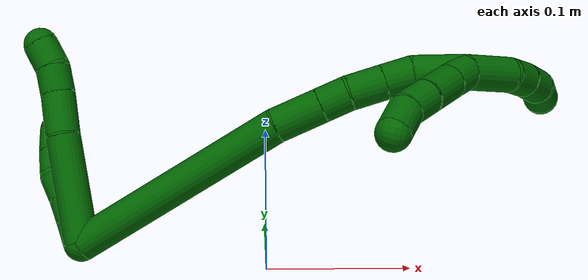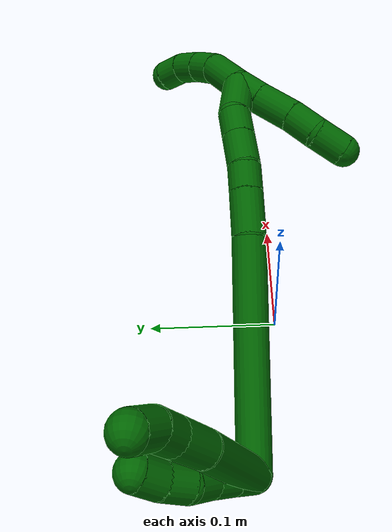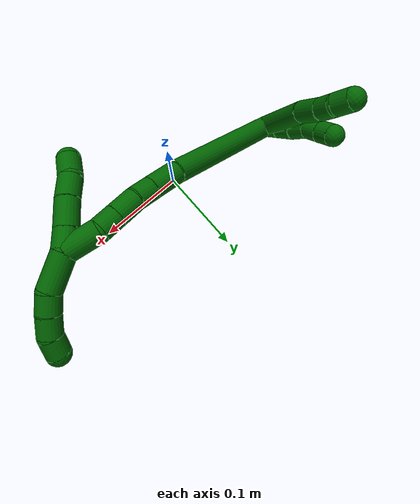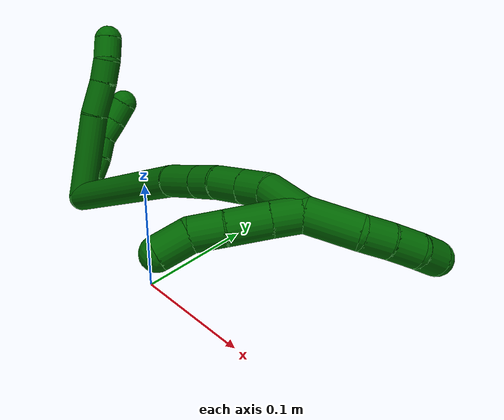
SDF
<sdf version="1.7">
 <world name="default">
  <model name="6">
   <static>0</static>
   <link name="6">
    <collision name="collision-cylinder-e_1_2_8">
     <pose>-0.006148 0.035277 0.015831 -1.14898 -0.15769 0.102199</pose>
     <geometry><cylinder><radius>0.0125</radius><length>0.078303</length></cylinder></geometry>
     <surface>
      <friction><ode><mu>1.16</mu><mu2>1.16</mu2><slip1>0</slip1><slip2>0</slip2></ode></friction>
      <contact><ode><kp>1e+06</kp><kd>1</kd><max_vel>0</max_vel><min_depth>0.001</min_depth></ode></contact>
     </surface>
    </collision>
    <visual name="visual-cylinder-e_1_2_8">
     <pose>-0.006148 0.035277 0.015831 -1.14898 -0.15769 0.102199</pose>
     <geometry><cylinder><radius>0.0125</radius><length>0.078303</length></cylinder></geometry>
     <material><ambient>0 0.392157 0.003922 1</ambient></material>
    </visual>
    <collision name="collision-cylinder-e_2_8_9">
     <pose>-0.016893 0.08436 0.037395 -1.17716 -0.298291 0.199931</pose>
     <geometry><cylinder><radius>0.0125</radius><length>0.031283</length></cylinder></geometry>
     <surface>
      <friction><ode><mu>1.16</mu><mu2>1.16</mu2><slip1>0</slip1><slip2>0</slip2></ode></friction>
      <contact><ode><kp>1e+06</kp><kd>1</kd><max_vel>0</max_vel><min_depth>0.001</min_depth></ode></contact>
     </surface>
    </collision>
    <visual name="visual-cylinder-e_2_8_9">
     <pose>-0.016893 0.08436 0.037395 -1.17716 -0.298291 0.199931</pose>
     <geometry><cylinder><radius>0.0125</radius><length>0.031283</length></cylinder></geometry>
     <material><ambient>0 0.392157 0.003922 1</ambient></material>
    </visual>
    <collision name="collision-cylinder-e_3_9_10">
     <pose>-0.023604 0.107153 0.047476 -1.12027 -0.208712 0.13118</pose>
     <geometry><cylinder><radius>0.0125</radius><length>0.020405</length></cylinder></geometry>
     <surface>
      <friction><ode><mu>1.16</mu><mu2>1.16</mu2><slip1>0</slip1><slip2>0</slip2></ode></friction>
      <contact><ode><kp>1e+06</kp><kd>1</kd><max_vel>0</max_vel><min_depth>0.001</min_depth></ode></contact>
     </surface>
    </collision>
    <visual name="visual-cylinder-e_3_9_10">
     <pose>-0.023604 0.107153 0.047476 -1.12027 -0.208712 0.13118</pose>
     <geometry><cylinder><radius>0.0125</radius><length>0.020405</length></cylinder></geometry>
     <material><ambient>0 0.392157 0.003922 1</ambient></material>
    </visual>
    <collision name="collision-cylinder-e_4_10_6">
     <pose>-0.028479 0.123161 0.05839 -0.818831 -0.279576 0.121963</pose>
     <geometry><cylinder><radius>0.0125</radius><length>0.02001</length></cylinder></geometry>
     <surface>
      <friction><ode><mu>1.16</mu><mu2>1.16</mu2><slip1>0</slip1><slip2>0</slip2></ode></friction>
      <contact><ode><kp>1e+06</kp><kd>1</kd><max_vel>0</max_vel><min_depth>0.001</min_depth></ode></contact>
     </surface>
    </collision>
    <visual name="visual-cylinder-e_4_10_6">
     <pose>-0.028479 0.123161 0.05839 -0.818831 -0.279576 0.121963</pose>
     <geometry><cylinder><radius>0.0125</radius><length>0.02001</length></cylinder></geometry>
     <material><ambient>0 0.392157 0.003922 1</ambient></material>
    </visual>
    <collision name="collision-cylinder-e_1_2_11">
     <pose>-0.005517 0.006743 0.004908 -0.94167 -0.58442 0.303885</pose>
     <geometry><cylinder><radius>0.0125</radius><length>0.02</length></cylinder></geometry>
     <surface>
      <friction><ode><mu>1.16</mu><mu2>1.16</mu2><slip1>0</slip1><slip2>0</slip2></ode></friction>
      <contact><ode><kp>1e+06</kp><kd>1</kd><max_vel>0</max_vel><min_depth>0.001</min_depth></ode></contact>
     </surface>
    </collision>
    <visual name="visual-cylinder-e_1_2_11">
     <pose>-0.005517 0.006743 0.004908 -0.94167 -0.58442 0.303885</pose>
     <geometry><cylinder><radius>0.0125</radius><length>0.02</length></cylinder></geometry>
     <material><ambient>0 0.392157 0.003922 1</ambient></material>
    </visual>
    <collision name="collision-cylinder-e_2_11_12">
     <pose>-0.016551 0.020095 0.014905 -0.914533 -0.584336 0.293859</pose>
     <geometry><cylinder><radius>0.0125</radius><length>0.02</length></cylinder></geometry>
     <surface>
      <friction><ode><mu>1.16</mu><mu2>1.16</mu2><slip1>0</slip1><slip2>0</slip2></ode></friction>
      <contact><ode><kp>1e+06</kp><kd>1</kd><max_vel>0</max_vel><min_depth>0.001</min_depth></ode></contact>
     </surface>
    </collision>
    <visual name="visual-cylinder-e_2_11_12">
     <pose>-0.016551 0.020095 0.014905 -0.914533 -0.584336 0.293859</pose>
     <geometry><cylinder><radius>0.0125</radius><length>0.02</length></cylinder></geometry>
     <material><ambient>0 0.392157 0.003922 1</ambient></material>
    </visual>
    <collision name="collision-cylinder-e_3_12_13">
     <pose>-0.026237 0.033638 0.02587 -0.867805 -0.430159 0.201759</pose>
     <geometry><cylinder><radius>0.0125</radius><length>0.02</length></cylinder></geometry>
     <surface>
      <friction><ode><mu>1.16</mu><mu2>1.16</mu2><slip1>0</slip1><slip2>0</slip2></ode></friction>
      <contact><ode><kp>1e+06</kp><kd>1</kd><max_vel>0</max_vel><min_depth>0.001</min_depth></ode></contact>
     </surface>
    </collision>
    <visual name="visual-cylinder-e_3_12_13">
     <pose>-0.026237 0.033638 0.02587 -0.867805 -0.430159 0.201759</pose>
     <geometry><cylinder><radius>0.0125</radius><length>0.02</length></cylinder></geometry>
     <material><ambient>0 0.392157 0.003922 1</ambient></material>
    </visual>
    <collision name="collision-cylinder-e_4_13_14">
     <pose>-0.036655 0.047734 0.034856 -1.16111 -0.674786 0.452354</pose>
     <geometry><cylinder><radius>0.0125</radius><length>0.02</length></cylinder></geometry>
     <surface>
      <friction><ode><mu>1.16</mu><mu2>1.16</mu2><slip1>0</slip1><slip2>0</slip2></ode></friction>
      <contact><ode><kp>1e+06</kp><kd>1</kd><max_vel>0</max_vel><min_depth>0.001</min_depth></ode></contact>
     </surface>
    </collision>
    <visual name="visual-cylinder-e_4_13_14">
     <pose>-0.036655 0.047734 0.034856 -1.16111 -0.674786 0.452354</pose>
     <geometry><cylinder><radius>0.0125</radius><length>0.02</length></cylinder></geometry>
     <material><ambient>0 0.392157 0.003922 1</ambient></material>
    </visual>
    <collision name="collision-cylinder-e_5_14_5">
     <pose>-0.047963 0.063186 0.040348 -1.29106 -0.530594 0.403703</pose>
     <geometry><cylinder><radius>0.0125</radius><length>0.02</length></cylinder></geometry>
     <surface>
      <friction><ode><mu>1.16</mu><mu2>1.16</mu2><slip1>0</slip1><slip2>0</slip2></ode></friction>
      <contact><ode><kp>1e+06</kp><kd>1</kd><max_vel>0</max_vel><min_depth>0.001</min_depth></ode></contact>
     </surface>
    </collision>
    <visual name="visual-cylinder-e_5_14_5">
     <pose>-0.047963 0.063186 0.040348 -1.29106 -0.530594 0.403703</pose>
     <geometry><cylinder><radius>0.0125</radius><length>0.02</length></cylinder></geometry>
     <material><ambient>0 0.392157 0.003922 1</ambient></material>
    </visual>
    <collision name="collision-cylinder-e_1_2_15">
     <pose>0.009672 0.056445 -0.057191 -2.36276 0.119788 -0.290198</pose>
     <geometry><cylinder><radius>0.0125</radius><length>0.16187</length></cylinder></geometry>
     <surface>
      <friction><ode><mu>1.16</mu><mu2>1.16</mu2><slip1>0</slip1><slip2>0</slip2></ode></friction>
      <contact><ode><kp>1e+06</kp><kd>1</kd><max_vel>0</max_vel><min_depth>0.001</min_depth></ode></contact>
     </surface>
    </collision>
    <visual name="visual-cylinder-e_1_2_15">
     <pose>0.009672 0.056445 -0.057191 -2.36276 0.119788 -0.290198</pose>
     <geometry><cylinder><radius>0.0125</radius><length>0.16187</length></cylinder></geometry>
     <material><ambient>0 0.392157 0.003922 1</ambient></material>
    </visual>
    <collision name="collision-cylinder-e_2_15_16">
     <pose>0.02022 0.123336 -0.128109 -2.49106 0.050776 -0.15031</pose>
     <geometry><cylinder><radius>0.0125</radius><length>0.034542</length></cylinder></geometry>
     <surface>
      <friction><ode><mu>1.16</mu><mu2>1.16</mu2><slip1>0</slip1><slip2>0</slip2></ode></friction>
      <contact><ode><kp>1e+06</kp><kd>1</kd><max_vel>0</max_vel><min_depth>0.001</min_depth></ode></contact>
     </surface>
    </collision>
    <visual name="visual-cylinder-e_2_15_16">
     <pose>0.02022 0.123336 -0.128109 -2.49106 0.050776 -0.15031</pose>
     <geometry><cylinder><radius>0.0125</radius><length>0.034542</length></cylinder></geometry>
     <material><ambient>0 0.392157 0.003922 1</ambient></material>
    </visual>
    <collision name="collision-cylinder-e_3_16_17">
     <pose>0.021531 0.140051 -0.150071 -2.49098 0.041945 -0.124218</pose>
     <geometry><cylinder><radius>0.0125</radius><length>0.02072</length></cylinder></geometry>
     <surface>
      <friction><ode><mu>1.16</mu><mu2>1.16</mu2><slip1>0</slip1><slip2>0</slip2></ode></friction>
      <contact><ode><kp>1e+06</kp><kd>1</kd><max_vel>0</max_vel><min_depth>0.001</min_depth></ode></contact>
     </surface>
    </collision>
    <visual name="visual-cylinder-e_3_16_17">
     <pose>0.021531 0.140051 -0.150071 -2.49098 0.041945 -0.124218</pose>
     <geometry><cylinder><radius>0.0125</radius><length>0.02072</length></cylinder></geometry>
     <material><ambient>0 0.392157 0.003922 1</ambient></material>
    </visual>
    <collision name="collision-cylinder-e_4_17_18">
     <pose>0.021029 0.152836 -0.169303 -2.6067 -0.073139 0.265467</pose>
     <geometry><cylinder><radius>0.0125</radius><length>0.025632</length></cylinder></geometry>
     <surface>
      <friction><ode><mu>1.16</mu><mu2>1.16</mu2><slip1>0</slip1><slip2>0</slip2></ode></friction>
      <contact><ode><kp>1e+06</kp><kd>1</kd><max_vel>0</max_vel><min_depth>0.001</min_depth></ode></contact>
     </surface>
    </collision>
    <visual name="visual-cylinder-e_4_17_18">
     <pose>0.021029 0.152836 -0.169303 -2.6067 -0.073139 0.265467</pose>
     <geometry><cylinder><radius>0.0125</radius><length>0.025632</length></cylinder></geometry>
     <material><ambient>0 0.392157 0.003922 1</ambient></material>
    </visual>
    <collision name="collision-cylinder-e_5_18_19">
     <pose>0.019327 0.164774 -0.189522 -2.61008 -0.071423 0.261013</pose>
     <geometry><cylinder><radius>0.0125</radius><length>0.021452</length></cylinder></geometry>
     <surface>
      <friction><ode><mu>1.16</mu><mu2>1.16</mu2><slip1>0</slip1><slip2>0</slip2></ode></friction>
      <contact><ode><kp>1e+06</kp><kd>1</kd><max_vel>0</max_vel><min_depth>0.001</min_depth></ode></contact>
     </surface>
    </collision>
    <visual name="visual-cylinder-e_5_18_19">
     <pose>0.019327 0.164774 -0.189522 -2.61008 -0.071423 0.261013</pose>
     <geometry><cylinder><radius>0.0125</radius><length>0.021452</length></cylinder></geometry>
     <material><ambient>0 0.392157 0.003922 1</ambient></material>
    </visual>
    <collision name="collision-cylinder-e_6_19_1">
     <pose>0.020524 0.174535 -0.215992 -2.89513 0.1099 -0.835861</pose>
     <geometry><cylinder><radius>0.0125</radius><length>0.035785</length></cylinder></geometry>
     <surface>
      <friction><ode><mu>1.16</mu><mu2>1.16</mu2><slip1>0</slip1><slip2>0</slip2></ode></friction>
      <contact><ode><kp>1e+06</kp><kd>1</kd><max_vel>0</max_vel><min_depth>0.001</min_depth></ode></contact>
     </surface>
    </collision>
    <visual name="visual-cylinder-e_6_19_1">
     <pose>0.020524 0.174535 -0.215992 -2.89513 0.1099 -0.835861</pose>
     <geometry><cylinder><radius>0.0125</radius><length>0.035785</length></cylinder></geometry>
     <material><ambient>0 0.392157 0.003922 1</ambient></material>
    </visual>
    <collision name="collision-cylinder-e_1_1_20">
     <pose>0.012414 0.181993 -0.249349 -2.95035 -0.550547 2.48686</pose>
     <geometry><cylinder><radius>0.0125</radius><length>0.038507</length></cylinder></geometry>
     <surface>
      <friction><ode><mu>1.16</mu><mu2>1.16</mu2><slip1>0</slip1><slip2>0</slip2></ode></friction>
      <contact><ode><kp>1e+06</kp><kd>1</kd><max_vel>0</max_vel><min_depth>0.001</min_depth></ode></contact>
     </surface>
    </collision>
    <visual name="visual-cylinder-e_1_1_20">
     <pose>0.012414 0.181993 -0.249349 -2.95035 -0.550547 2.48686</pose>
     <geometry><cylinder><radius>0.0125</radius><length>0.038507</length></cylinder></geometry>
     <material><ambient>0 0.392157 0.003922 1</ambient></material>
    </visual>
    <collision name="collision-cylinder-e_2_20_21">
     <pose>-0.005268 0.185106 -0.272042 3.14066 -0.857554 -3.13954</pose>
     <geometry><cylinder><radius>0.0125</radius><length>0.020124</length></cylinder></geometry>
     <surface>
      <friction><ode><mu>1.16</mu><mu2>1.16</mu2><slip1>0</slip1><slip2>0</slip2></ode></friction>
      <contact><ode><kp>1e+06</kp><kd>1</kd><max_vel>0</max_vel><min_depth>0.001</min_depth></ode></contact>
     </surface>
    </collision>
    <visual name="visual-cylinder-e_2_20_21">
     <pose>-0.005268 0.185106 -0.272042 3.14066 -0.857554 -3.13954</pose>
     <geometry><cylinder><radius>0.0125</radius><length>0.020124</length></cylinder></geometry>
     <material><ambient>0 0.392157 0.003922 1</ambient></material>
    </visual>
    <collision name="collision-cylinder-e_3_21_22">
     <pose>-0.021256 0.184121 -0.285016 2.98968 -0.913547 -2.83432</pose>
     <geometry><cylinder><radius>0.0125</radius><length>0.021168</length></cylinder></geometry>
     <surface>
      <friction><ode><mu>1.16</mu><mu2>1.16</mu2><slip1>0</slip1><slip2>0</slip2></ode></friction>
      <contact><ode><kp>1e+06</kp><kd>1</kd><max_vel>0</max_vel><min_depth>0.001</min_depth></ode></contact>
     </surface>
    </collision>
    <visual name="visual-cylinder-e_3_21_22">
     <pose>-0.021256 0.184121 -0.285016 2.98968 -0.913547 -2.83432</pose>
     <geometry><cylinder><radius>0.0125</radius><length>0.021168</length></cylinder></geometry>
     <material><ambient>0 0.392157 0.003922 1</ambient></material>
    </visual>
    <collision name="collision-cylinder-e_4_22_4">
     <pose>-0.038616 0.180154 -0.294933 2.43833 -1.09554 -2.05869</pose>
     <geometry><cylinder><radius>0.0125</radius><length>0.020201</length></cylinder></geometry>
     <surface>
      <friction><ode><mu>1.16</mu><mu2>1.16</mu2><slip1>0</slip1><slip2>0</slip2></ode></friction>
      <contact><ode><kp>1e+06</kp><kd>1</kd><max_vel>0</max_vel><min_depth>0.001</min_depth></ode></contact>
     </surface>
    </collision>
    <visual name="visual-cylinder-e_4_22_4">
     <pose>-0.038616 0.180154 -0.294933 2.43833 -1.09554 -2.05869</pose>
     <geometry><cylinder><radius>0.0125</radius><length>0.020201</length></cylinder></geometry>
     <material><ambient>0 0.392157 0.003922 1</ambient></material>
    </visual>
    <collision name="collision-cylinder-e_1_1_23">
     <pose>0.0301 0.173908 -0.227806 0.74045 0.802237 0.326289</pose>
     <geometry><cylinder><radius>0.0125</radius><length>0.02118</length></cylinder></geometry>
     <surface>
      <friction><ode><mu>1.16</mu><mu2>1.16</mu2><slip1>0</slip1><slip2>0</slip2></ode></friction>
      <contact><ode><kp>1e+06</kp><kd>1</kd><max_vel>0</max_vel><min_depth>0.001</min_depth></ode></contact>
     </surface>
    </collision>
    <visual name="visual-cylinder-e_1_1_23">
     <pose>0.0301 0.173908 -0.227806 0.74045 0.802237 0.326289</pose>
     <geometry><cylinder><radius>0.0125</radius><length>0.02118</length></cylinder></geometry>
     <material><ambient>0 0.392157 0.003922 1</ambient></material>
    </visual>
    <collision name="collision-cylinder-e_2_23_24">
     <pose>0.049025 0.162011 -0.215147 0.764676 0.846294 0.358314</pose>
     <geometry><cylinder><radius>0.0125</radius><length>0.030214</length></cylinder></geometry>
     <surface>
      <friction><ode><mu>1.16</mu><mu2>1.16</mu2><slip1>0</slip1><slip2>0</slip2></ode></friction>
      <contact><ode><kp>1e+06</kp><kd>1</kd><max_vel>0</max_vel><min_depth>0.001</min_depth></ode></contact>
     </surface>
    </collision>
    <visual name="visual-cylinder-e_2_23_24">
     <pose>0.049025 0.162011 -0.215147 0.764676 0.846294 0.358314</pose>
     <geometry><cylinder><radius>0.0125</radius><length>0.030214</length></cylinder></geometry>
     <material><ambient>0 0.392157 0.003922 1</ambient></material>
    </visual>
    <collision name="collision-cylinder-e_3_24_25">
     <pose>0.068436 0.148982 -0.20171 0.776139 0.749315 0.318778</pose>
     <geometry><cylinder><radius>0.0125</radius><length>0.023778</length></cylinder></geometry>
     <surface>
      <friction><ode><mu>1.16</mu><mu2>1.16</mu2><slip1>0</slip1><slip2>0</slip2></ode></friction>
      <contact><ode><kp>1e+06</kp><kd>1</kd><max_vel>0</max_vel><min_depth>0.001</min_depth></ode></contact>
     </surface>
    </collision>
    <visual name="visual-cylinder-e_3_24_25">
     <pose>0.068436 0.148982 -0.20171 0.776139 0.749315 0.318778</pose>
     <geometry><cylinder><radius>0.0125</radius><length>0.023778</length></cylinder></geometry>
     <material><ambient>0 0.392157 0.003922 1</ambient></material>
    </visual>
    <collision name="collision-cylinder-e_4_25_3">
     <pose>0.085398 0.134645 -0.192729 1.24649 0.795177 0.586345</pose>
     <geometry><cylinder><radius>0.0125</radius><length>0.024828</length></cylinder></geometry>
     <surface>
      <friction><ode><mu>1.16</mu><mu2>1.16</mu2><slip1>0</slip1><slip2>0</slip2></ode></friction>
      <contact><ode><kp>1e+06</kp><kd>1</kd><max_vel>0</max_vel><min_depth>0.001</min_depth></ode></contact>
     </surface>
    </collision>
    <visual name="visual-cylinder-e_4_25_3">
     <pose>0.085398 0.134645 -0.192729 1.24649 0.795177 0.586345</pose>
     <geometry><cylinder><radius>0.0125</radius><length>0.024828</length></cylinder></geometry>
     <material><ambient>0 0.392157 0.003922 1</ambient></material>
    </visual>
    <collision name="collision-sphere-3">
     <pose>0.094261 0.126406 -0.189959 0 -0 0</pose>
     <geometry><sphere><radius>0.0125</radius></sphere></geometry>
     <surface>
      <friction><ode><mu>1.16</mu><mu2>1.16</mu2><slip1>0</slip1><slip2>0</slip2></ode></friction>
      <contact><ode><kp>1e+06</kp><kd>1</kd><max_vel>0</max_vel><min_depth>0.001</min_depth></ode></contact>
     </surface>
    </collision>
    <visual name="visual-sphere-3">
     <pose>0.094261 0.126406 -0.189959 0 -0 0</pose>
     <geometry><sphere><radius>0.0125</radius></sphere></geometry>
     <material><ambient>0 0.392157 0.003922 1</ambient></material>
    </visual>
    <collision name="collision-sphere-25">
     <pose>0.076534 0.142884 -0.195498 0 -0 0</pose>
     <geometry><sphere><radius>0.0125</radius></sphere></geometry>
     <surface>
      <friction><ode><mu>1.16</mu><mu2>1.16</mu2><slip1>0</slip1><slip2>0</slip2></ode></friction>
      <contact><ode><kp>1e+06</kp><kd>1</kd><max_vel>0</max_vel><min_depth>0.001</min_depth></ode></contact>
     </surface>
    </collision>
    <visual name="visual-sphere-25">
     <pose>0.076534 0.142884 -0.195498 0 -0 0</pose>
     <geometry><sphere><radius>0.0125</radius></sphere></geometry>
     <material><ambient>0 0.392157 0.003922 1</ambient></material>
    </visual>
    <collision name="collision-sphere-24">
     <pose>0.060338 0.15508 -0.207922 0 -0 0</pose>
     <geometry><sphere><radius>0.0125</radius></sphere></geometry>
     <surface>
      <friction><ode><mu>1.16</mu><mu2>1.16</mu2><slip1>0</slip1><slip2>0</slip2></ode></friction>
      <contact><ode><kp>1e+06</kp><kd>1</kd><max_vel>0</max_vel><min_depth>0.001</min_depth></ode></contact>
     </surface>
    </collision>
    <visual name="visual-sphere-24">
     <pose>0.060338 0.15508 -0.207922 0 -0 0</pose>
     <geometry><sphere><radius>0.0125</radius></sphere></geometry>
     <material><ambient>0 0.392157 0.003922 1</ambient></material>
    </visual>
    <collision name="collision-sphere-23">
     <pose>0.037713 0.168943 -0.222372 0 -0 0</pose>
     <geometry><sphere><radius>0.0125</radius></sphere></geometry>
     <surface>
      <friction><ode><mu>1.16</mu><mu2>1.16</mu2><slip1>0</slip1><slip2>0</slip2></ode></friction>
      <contact><ode><kp>1e+06</kp><kd>1</kd><max_vel>0</max_vel><min_depth>0.001</min_depth></ode></contact>
     </surface>
    </collision>
    <visual name="visual-sphere-23">
     <pose>0.037713 0.168943 -0.222372 0 -0 0</pose>
     <geometry><sphere><radius>0.0125</radius></sphere></geometry>
     <material><ambient>0 0.392157 0.003922 1</ambient></material>
    </visual>
    <collision name="collision-sphere-4">
     <pose>-0.047597 0.177165 -0.298459 0 -0 0</pose>
     <geometry><sphere><radius>0.0125</radius></sphere></geometry>
     <surface>
      <friction><ode><mu>1.16</mu><mu2>1.16</mu2><slip1>0</slip1><slip2>0</slip2></ode></friction>
      <contact><ode><kp>1e+06</kp><kd>1</kd><max_vel>0</max_vel><min_depth>0.001</min_depth></ode></contact>
     </surface>
    </collision>
    <visual name="visual-sphere-4">
     <pose>-0.047597 0.177165 -0.298459 0 -0 0</pose>
     <geometry><sphere><radius>0.0125</radius></sphere></geometry>
     <material><ambient>0 0.392157 0.003922 1</ambient></material>
    </visual>
    <collision name="collision-sphere-22">
     <pose>-0.029635 0.183143 -0.291408 0 -0 0</pose>
     <geometry><sphere><radius>0.0125</radius></sphere></geometry>
     <surface>
      <friction><ode><mu>1.16</mu><mu2>1.16</mu2><slip1>0</slip1><slip2>0</slip2></ode></friction>
      <contact><ode><kp>1e+06</kp><kd>1</kd><max_vel>0</max_vel><min_depth>0.001</min_depth></ode></contact>
     </surface>
    </collision>
    <visual name="visual-sphere-22">
     <pose>-0.029635 0.183143 -0.291408 0 -0 0</pose>
     <geometry><sphere><radius>0.0125</radius></sphere></geometry>
     <material><ambient>0 0.392157 0.003922 1</ambient></material>
    </visual>
    <collision name="collision-sphere-21">
     <pose>-0.012877 0.1851 -0.278625 0 -0 0</pose>
     <geometry><sphere><radius>0.0125</radius></sphere></geometry>
     <surface>
      <friction><ode><mu>1.16</mu><mu2>1.16</mu2><slip1>0</slip1><slip2>0</slip2></ode></friction>
      <contact><ode><kp>1e+06</kp><kd>1</kd><max_vel>0</max_vel><min_depth>0.001</min_depth></ode></contact>
     </surface>
    </collision>
    <visual name="visual-sphere-21">
     <pose>-0.012877 0.1851 -0.278625 0 -0 0</pose>
     <geometry><sphere><radius>0.0125</radius></sphere></geometry>
     <material><ambient>0 0.392157 0.003922 1</ambient></material>
    </visual>
    <collision name="collision-sphere-20">
     <pose>0.002342 0.185112 -0.265458 0 -0 0</pose>
     <geometry><sphere><radius>0.0125</radius></sphere></geometry>
     <surface>
      <friction><ode><mu>1.16</mu><mu2>1.16</mu2><slip1>0</slip1><slip2>0</slip2></ode></friction>
      <contact><ode><kp>1e+06</kp><kd>1</kd><max_vel>0</max_vel><min_depth>0.001</min_depth></ode></contact>
     </surface>
    </collision>
    <visual name="visual-sphere-20">
     <pose>0.002342 0.185112 -0.265458 0 -0 0</pose>
     <geometry><sphere><radius>0.0125</radius></sphere></geometry>
     <material><ambient>0 0.392157 0.003922 1</ambient></material>
    </visual>
    <collision name="collision-sphere-11">
     <pose>-0.011034 0.013487 0.009816 0 -0 0</pose>
     <geometry><sphere><radius>0.0125</radius></sphere></geometry>
     <surface>
      <friction><ode><mu>1.16</mu><mu2>1.16</mu2><slip1>0</slip1><slip2>0</slip2></ode></friction>
      <contact><ode><kp>1e+06</kp><kd>1</kd><max_vel>0</max_vel><min_depth>0.001</min_depth></ode></contact>
     </surface>
    </collision>
    <visual name="visual-sphere-11">
     <pose>-0.011034 0.013487 0.009816 0 -0 0</pose>
     <geometry><sphere><radius>0.0125</radius></sphere></geometry>
     <material><ambient>0 0.392157 0.003922 1</ambient></material>
    </visual>
    <collision name="collision-sphere-6">
     <pose>-0.03124 0.130184 0.064959 0 -0 0</pose>
     <geometry><sphere><radius>0.0125</radius></sphere></geometry>
     <surface>
      <friction><ode><mu>1.16</mu><mu2>1.16</mu2><slip1>0</slip1><slip2>0</slip2></ode></friction>
      <contact><ode><kp>1e+06</kp><kd>1</kd><max_vel>0</max_vel><min_depth>0.001</min_depth></ode></contact>
     </surface>
    </collision>
    <visual name="visual-sphere-6">
     <pose>-0.03124 0.130184 0.064959 0 -0 0</pose>
     <geometry><sphere><radius>0.0125</radius></sphere></geometry>
     <material><ambient>0 0.392157 0.003922 1</ambient></material>
    </visual>
    <collision name="collision-sphere-10">
     <pose>-0.025718 0.116138 0.051822 0 -0 0</pose>
     <geometry><sphere><radius>0.0125</radius></sphere></geometry>
     <surface>
      <friction><ode><mu>1.16</mu><mu2>1.16</mu2><slip1>0</slip1><slip2>0</slip2></ode></friction>
      <contact><ode><kp>1e+06</kp><kd>1</kd><max_vel>0</max_vel><min_depth>0.001</min_depth></ode></contact>
     </surface>
    </collision>
    <visual name="visual-sphere-10">
     <pose>-0.025718 0.116138 0.051822 0 -0 0</pose>
     <geometry><sphere><radius>0.0125</radius></sphere></geometry>
     <material><ambient>0 0.392157 0.003922 1</ambient></material>
    </visual>
    <collision name="collision-sphere-9">
     <pose>-0.02149 0.098168 0.04313 0 -0 0</pose>
     <geometry><sphere><radius>0.0125</radius></sphere></geometry>
     <surface>
      <friction><ode><mu>1.16</mu><mu2>1.16</mu2><slip1>0</slip1><slip2>0</slip2></ode></friction>
      <contact><ode><kp>1e+06</kp><kd>1</kd><max_vel>0</max_vel><min_depth>0.001</min_depth></ode></contact>
     </surface>
    </collision>
    <visual name="visual-sphere-9">
     <pose>-0.02149 0.098168 0.04313 0 -0 0</pose>
     <geometry><sphere><radius>0.0125</radius></sphere></geometry>
     <material><ambient>0 0.392157 0.003922 1</ambient></material>
    </visual>
    <collision name="collision-sphere-2">
     <geometry><sphere><radius>0.0125</radius></sphere></geometry>
     <surface>
      <friction><ode><mu>1.16</mu><mu2>1.16</mu2><slip1>0</slip1><slip2>0</slip2></ode></friction>
      <contact><ode><kp>1e+06</kp><kd>1</kd><max_vel>0</max_vel><min_depth>0.001</min_depth></ode></contact>
     </surface>
    </collision>
    <visual name="visual-sphere-2">
     <geometry><sphere><radius>0.0125</radius></sphere></geometry>
     <material><ambient>0 0.392157 0.003922 1</ambient></material>
    </visual>
    <collision name="collision-sphere-19">
     <pose>0.018562 0.170196 -0.198745 0 -0 0</pose>
     <geometry><sphere><radius>0.0125</radius></sphere></geometry>
     <surface>
      <friction><ode><mu>1.16</mu><mu2>1.16</mu2><slip1>0</slip1><slip2>0</slip2></ode></friction>
      <contact><ode><kp>1e+06</kp><kd>1</kd><max_vel>0</max_vel><min_depth>0.001</min_depth></ode></contact>
     </surface>
    </collision>
    <visual name="visual-sphere-19">
     <pose>0.018562 0.170196 -0.198745 0 -0 0</pose>
     <geometry><sphere><radius>0.0125</radius></sphere></geometry>
     <material><ambient>0 0.392157 0.003922 1</ambient></material>
    </visual>
    <collision name="collision-sphere-8">
     <pose>-0.012296 0.070553 0.031661 0 -0 0</pose>
     <geometry><sphere><radius>0.0125</radius></sphere></geometry>
     <surface>
      <friction><ode><mu>1.16</mu><mu2>1.16</mu2><slip1>0</slip1><slip2>0</slip2></ode></friction>
      <contact><ode><kp>1e+06</kp><kd>1</kd><max_vel>0</max_vel><min_depth>0.001</min_depth></ode></contact>
     </surface>
    </collision>
    <visual name="visual-sphere-8">
     <pose>-0.012296 0.070553 0.031661 0 -0 0</pose>
     <geometry><sphere><radius>0.0125</radius></sphere></geometry>
     <material><ambient>0 0.392157 0.003922 1</ambient></material>
    </visual>
    <collision name="collision-sphere-12">
     <pose>-0.022067 0.026703 0.019994 0 -0 0</pose>
     <geometry><sphere><radius>0.0125</radius></sphere></geometry>
     <surface>
      <friction><ode><mu>1.16</mu><mu2>1.16</mu2><slip1>0</slip1><slip2>0</slip2></ode></friction>
      <contact><ode><kp>1e+06</kp><kd>1</kd><max_vel>0</max_vel><min_depth>0.001</min_depth></ode></contact>
     </surface>
    </collision>
    <visual name="visual-sphere-12">
     <pose>-0.022067 0.026703 0.019994 0 -0 0</pose>
     <geometry><sphere><radius>0.0125</radius></sphere></geometry>
     <material><ambient>0 0.392157 0.003922 1</ambient></material>
    </visual>
    <collision name="collision-sphere-13">
     <pose>-0.030408 0.040572 0.031746 0 -0 0</pose>
     <geometry><sphere><radius>0.0125</radius></sphere></geometry>
     <surface>
      <friction><ode><mu>1.16</mu><mu2>1.16</mu2><slip1>0</slip1><slip2>0</slip2></ode></friction>
      <contact><ode><kp>1e+06</kp><kd>1</kd><max_vel>0</max_vel><min_depth>0.001</min_depth></ode></contact>
     </surface>
    </collision>
    <visual name="visual-sphere-13">
     <pose>-0.030408 0.040572 0.031746 0 -0 0</pose>
     <geometry><sphere><radius>0.0125</radius></sphere></geometry>
     <material><ambient>0 0.392157 0.003922 1</ambient></material>
    </visual>
    <collision name="collision-sphere-14">
     <pose>-0.042902 0.054896 0.037967 0 -0 0</pose>
     <geometry><sphere><radius>0.0125</radius></sphere></geometry>
     <surface>
      <friction><ode><mu>1.16</mu><mu2>1.16</mu2><slip1>0</slip1><slip2>0</slip2></ode></friction>
      <contact><ode><kp>1e+06</kp><kd>1</kd><max_vel>0</max_vel><min_depth>0.001</min_depth></ode></contact>
     </surface>
    </collision>
    <visual name="visual-sphere-14">
     <pose>-0.042902 0.054896 0.037967 0 -0 0</pose>
     <geometry><sphere><radius>0.0125</radius></sphere></geometry>
     <material><ambient>0 0.392157 0.003922 1</ambient></material>
    </visual>
    <collision name="collision-sphere-5">
     <pose>-0.053023 0.071476 0.04273 0 -0 0</pose>
     <geometry><sphere><radius>0.0125</radius></sphere></geometry>
     <surface>
      <friction><ode><mu>1.16</mu><mu2>1.16</mu2><slip1>0</slip1><slip2>0</slip2></ode></friction>
      <contact><ode><kp>1e+06</kp><kd>1</kd><max_vel>0</max_vel><min_depth>0.001</min_depth></ode></contact>
     </surface>
    </collision>
    <visual name="visual-sphere-5">
     <pose>-0.053023 0.071476 0.04273 0 -0 0</pose>
     <geometry><sphere><radius>0.0125</radius></sphere></geometry>
     <material><ambient>0 0.392157 0.003922 1</ambient></material>
    </visual>
    <collision name="collision-sphere-15">
     <pose>0.019344 0.11289 -0.114383 0 -0 0</pose>
     <geometry><sphere><radius>0.0125</radius></sphere></geometry>
     <surface>
      <friction><ode><mu>1.16</mu><mu2>1.16</mu2><slip1>0</slip1><slip2>0</slip2></ode></friction>
      <contact><ode><kp>1e+06</kp><kd>1</kd><max_vel>0</max_vel><min_depth>0.001</min_depth></ode></contact>
     </surface>
    </collision>
    <visual name="visual-sphere-15">
     <pose>0.019344 0.11289 -0.114383 0 -0 0</pose>
     <geometry><sphere><radius>0.0125</radius></sphere></geometry>
     <material><ambient>0 0.392157 0.003922 1</ambient></material>
    </visual>
    <collision name="collision-sphere-16">
     <pose>0.021097 0.133782 -0.141835 0 -0 0</pose>
     <geometry><sphere><radius>0.0125</radius></sphere></geometry>
     <surface>
      <friction><ode><mu>1.16</mu><mu2>1.16</mu2><slip1>0</slip1><slip2>0</slip2></ode></friction>
      <contact><ode><kp>1e+06</kp><kd>1</kd><max_vel>0</max_vel><min_depth>0.001</min_depth></ode></contact>
     </surface>
    </collision>
    <visual name="visual-sphere-16">
     <pose>0.021097 0.133782 -0.141835 0 -0 0</pose>
     <geometry><sphere><radius>0.0125</radius></sphere></geometry>
     <material><ambient>0 0.392157 0.003922 1</ambient></material>
    </visual>
    <collision name="collision-sphere-17">
     <pose>0.021966 0.14632 -0.158307 0 -0 0</pose>
     <geometry><sphere><radius>0.0125</radius></sphere></geometry>
     <surface>
      <friction><ode><mu>1.16</mu><mu2>1.16</mu2><slip1>0</slip1><slip2>0</slip2></ode></friction>
      <contact><ode><kp>1e+06</kp><kd>1</kd><max_vel>0</max_vel><min_depth>0.001</min_depth></ode></contact>
     </surface>
    </collision>
    <visual name="visual-sphere-17">
     <pose>0.021966 0.14632 -0.158307 0 -0 0</pose>
     <geometry><sphere><radius>0.0125</radius></sphere></geometry>
     <material><ambient>0 0.392157 0.003922 1</ambient></material>
    </visual>
    <collision name="collision-sphere-18">
     <pose>0.020093 0.159351 -0.1803 0 -0 0</pose>
     <geometry><sphere><radius>0.0125</radius></sphere></geometry>
     <surface>
      <friction><ode><mu>1.16</mu><mu2>1.16</mu2><slip1>0</slip1><slip2>0</slip2></ode></friction>
      <contact><ode><kp>1e+06</kp><kd>1</kd><max_vel>0</max_vel><min_depth>0.001</min_depth></ode></contact>
     </surface>
    </collision>
    <visual name="visual-sphere-18">
     <pose>0.020093 0.159351 -0.1803 0 -0 0</pose>
     <geometry><sphere><radius>0.0125</radius></sphere></geometry>
     <material><ambient>0 0.392157 0.003922 1</ambient></material>
    </visual>
    <collision name="collision-sphere-1">
     <pose>0.022487 0.178874 -0.233239 0 -0 0</pose>
     <geometry><sphere><radius>0.0125</radius></sphere></geometry>
     <surface>
      <friction><ode><mu>1.16</mu><mu2>1.16</mu2><slip1>0</slip1><slip2>0</slip2></ode></friction>
      <contact><ode><kp>1e+06</kp><kd>1</kd><max_vel>0</max_vel><min_depth>0.001</min_depth></ode></contact>
     </surface>
    </collision>
    <visual name="visual-sphere-1">
     <pose>0.022487 0.178874 -0.233239 0 -0 0</pose>
     <geometry><sphere><radius>0.0125</radius></sphere></geometry>
     <material><ambient>0 0.392157 0.003922 1</ambient></material>
    </visual>
    <inertial>
     <pose>0.006249 0.102947 -0.098582 0 -0 0</pose>
     <mass>0.75</mass>
     <inertia>
      <ixx>0.000312</ixx>
      <ixy>0</ixy>
      <ixz>0</ixz>
      <iyy>-0.000273</iyy>
      <iyz>0</iyz>
      <izz>-0.000346</izz>
     </inertia>
    </inertial>
   </link>
   <pose>-0.130087 0.023808 0.011675 1.33952 -0.247908 -1.59994</pose>
  </model>
 </world>
</sdf>
